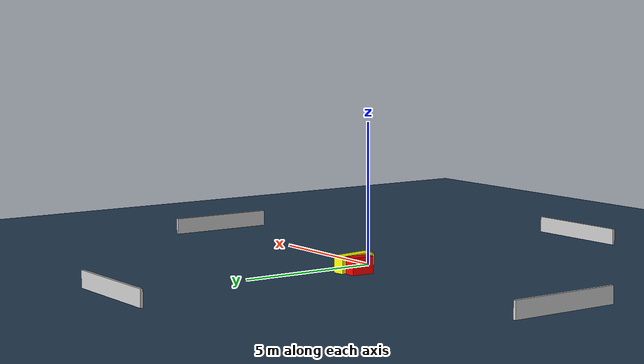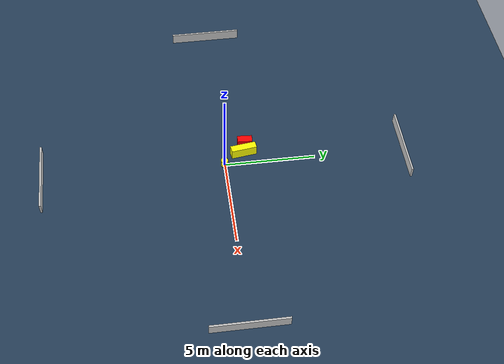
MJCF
<?xml version="1.0" ?>
<mujoco model="generated_environment">
  <option timestep="0.01" integrator="RK4" cone="elliptic"/>
  <default>
    <geom density="1"/>
  </default>
  <asset>
    <texture builtin="gradient" height="3072" name="skybox" rgb1="0.3 0.5 0.7" rgb2="0 0 0" type="skybox" width="512"/>
    <texture builtin="checker" height="300" name="groundplane" rgb1="0.2 0.3 0.4" rgb2="0.1 0.2 0.3" type="2d" width="300"/>
    <material name="groundplane" reflectance="0.2" texrepeat="5 5" texture="groundplane"/>
  </asset>
  <worldbody>
    <light dir="0 0 -1" directional="true" pos="0 0 1.5"/>
    <geom condim="3" friction="0.5 0.005 0.001" material="groundplane" name="floor" pos="0 0 0" size="0 0 0.05" type="plane"/>
    <body name="walls">
      <geom name="wall_1" condim="4" pos="-10.0 0.0 0.3" rgba="0.800000011920929 0.800000011920929 0.800000011920929 1.0" size="0.05 2.0 0.3" type="box"/>
      <geom name="wall_2" condim="4" pos="10.0 0.0 0.3" rgba="0.800000011920929 0.800000011920929 0.800000011920929 1.0" size="0.05 2.0 0.3" type="box"/>
      <geom name="wall_3" condim="4" pos="0.0 -10.0 0.3" rgba="0.800000011920929 0.800000011920929 0.800000011920929 1.0" size="2.0 0.05 0.3" type="box"/>
      <geom name="wall_4" condim="4" pos="0.0 10.0 0.3" rgba="0.800000011920929 0.800000011920929 0.800000011920929 1.0" size="2.0 0.05 0.3" type="box"/>
    </body>
    <body name="robot">
      <joint name="joint_x" type="slide" pos="0 0 0" axis="1 0 0"/>
      <joint name="joint_y" type="slide" pos="0 0 0" axis="0 1 0"/>
      <geom name="robot" type="cylinder" pos="0.0 0.0 0.2" size="0.2 0.2 0.0" mass="5.0" friction="1.0 0.005 0.0001" condim="4" rgba="1.0 1.0 0.0 1.0"/>
    </body>
    <body name="obstacle_1_movable">
      <geom name="obstacle_1_movable" condim="4" pos="-0.6776551086545269 1.128629712449855 0.3" euler="0 0 7.904563598881986" friction="0.0 0.005 0.001" rgba="1.0 1.0 0.0 1.0" size="0.20245706128035598 0.70818952929665 0.3" type="box" mass="0.1"/>
      <joint type="free"/>
    </body>
    <body name="obstacle_2_static">
      <geom name="obstacle_2_static" condim="4" pos="-1.2415009922142697 1.2712053505597611 0.3" euler="0 0 176.83210722209466" friction="0.0 0.005 0.001" rgba="1.0 0.0 0.0 1.0" size="0.21329066035556804 0.40820446554912826 0.3" type="box"/>
    </body>
  </worldbody>
  <actuator>
    <motor name="actuator_x" joint="joint_x" gear="1" ctrlrange="-1 1"/>
    <motor name="actuator_y" joint="joint_y" gear="1" ctrlrange="-1 1"/>
  </actuator>
</mujoco>
